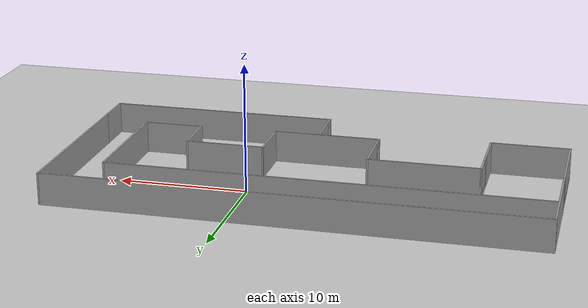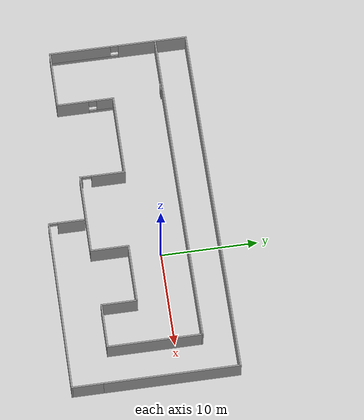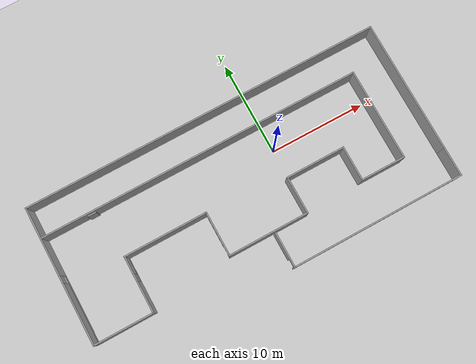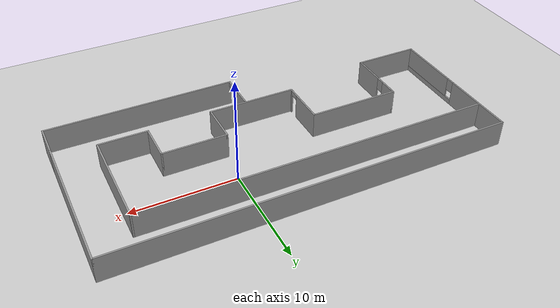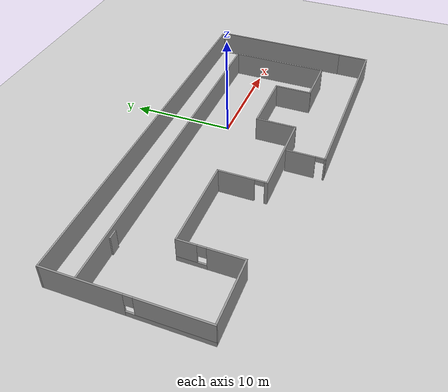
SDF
<sdf version="1.7">
 <world name="default">
  <light name="sun" type="directional">
   <pose>0 0 10 0 -0 0</pose>
   <diffuse>0.8 0.8 0.8 1</diffuse>
   <specular>0.2 0.2 0.2 1</specular>
   <attenuation>
    <range>1000</range>
    <constant>0.9</constant>
    <linear>0.01</linear>
    <quadratic>0.001</quadratic>
   </attenuation>
   <direction>-0.5 0.1 -0.9</direction>
   <spot><inner_angle>0</inner_angle><outer_angle>0</outer_angle><falloff>0</falloff></spot>
  </light>
  <model name="ground_plane">
   <static>1</static>
   <link name="link">
    <collision name="collision">
     <geometry><plane><normal>0 0 1</normal><size>100 100</size></plane></geometry>
     <surface><friction><ode><mu>100</mu><mu2>50</mu2></ode></friction></surface>
    </collision>
    <visual name="visual">
     <cast_shadows>0</cast_shadows>
     <geometry><plane><normal>0 0 1</normal><size>100 100</size></plane></geometry>
     <material>
      <script><uri>file://media/materials/scripts/gazebo.material</uri><name>Gazebo/Grey</name></script>
     </material>
    </visual>
   </link>
  </model>
  <gravity>0 0 -9.8</gravity>
  <magnetic_field>6e-06 2.3e-05 -4.2e-05</magnetic_field>
  <atmosphere type="adiabatic"/>
  <physics type="ode">
   <max_step_size>0.001</max_step_size>
   <real_time_factor>1</real_time_factor>
   <real_time_update_rate>1000</real_time_update_rate>
  </physics>
  <scene><ambient>0.4 0.4 0.4 1</ambient><background>0.7 0.7 0.7 1</background><shadows>1</shadows></scene>
  <spherical_coordinates>
   <surface_model>EARTH_WGS84</surface_model>
   <latitude_deg>0</latitude_deg>
   <longitude_deg>0</longitude_deg>
   <elevation>0</elevation>
   <heading_deg>0</heading_deg>
  </spherical_coordinates>
  <model name="my_room">
   <pose>-4.66131 -2.46983 0 0 -0 0</pose>
   <link name="Door_3">
    <collision name="Door_3_Collision">
     <geometry><box><size>0.9 0.17 2</size></box></geometry>
     <pose>0 0 1 0 -0 0</pose>
    </collision>
    <visual name="Door_3_Visual">
     <pose>0 0 1 0 -0 0</pose>
     <geometry><box><size>0.9 0.17 2</size></box></geometry>
     <material>
      <script><uri>file://media/materials/scripts/gazebo.material</uri><name>Gazebo/Grey</name></script>
     </material>
    </visual>
    <pose>-13.658 5.10812 0 0 -0 0</pose>
   </link>
   <link name="Wall_10">
    <collision name="Wall_10_Collision">
     <geometry><box><size>8.75 0.15 2.5</size></box></geometry>
     <pose>0 0 1.25 0 -0 0</pose>
    </collision>
    <visual name="Wall_10_Visual">
     <pose>0 0 1.25 0 -0 0</pose>
     <geometry><box><size>8.75 0.15 2.5</size></box></geometry>
     <material>
      <script><uri>file://media/materials/scripts/gazebo.material</uri><name>Gazebo/Grey</name></script>
      <ambient>1 1 1 1</ambient>
     </material>
     <meta><layer>0</layer></meta>
    </visual>
    <pose>-8.4 -0.025001 0 0 -0 0</pose>
   </link>
   <link name="Wall_11">
    <pose>-4.1 -2.325 0 0 -0 -1.5708</pose>
    <visual name="Wall_11_Visual_0">
     <pose>-0.608588 0 1.25 0 -0 0</pose>
     <geometry><box><size>3.53282 0.15 2.5</size></box></geometry>
     <material>
      <script><uri>file://media/materials/scripts/gazebo.material</uri><name>Gazebo/Grey</name></script>
      <ambient>1 1 1 1</ambient>
     </material>
     <meta><layer>0</layer></meta>
    </visual>
    <collision name="Wall_11_Collision_0">
     <geometry><box><size>3.53282 0.15 2.5</size></box></geometry>
     <pose>-0.608588 0 1.25 0 -0 0</pose>
    </collision>
    <visual name="Wall_11_Visual_1">
     <pose>2.21641 0 1.25 0 -0 0</pose>
     <geometry><box><size>0.317176 0.15 2.5</size></box></geometry>
     <material>
      <script><uri>file://media/materials/scripts/gazebo.material</uri><name>Gazebo/Grey</name></script>
      <ambient>1 1 1 1</ambient>
     </material>
     <meta><layer>0</layer></meta>
    </visual>
    <collision name="Wall_11_Collision_1">
     <geometry><box><size>0.317176 0.15 2.5</size></box></geometry>
     <pose>2.21641 0 1.25 0 -0 0</pose>
    </collision>
    <visual name="Wall_11_Visual_2">
     <pose>1.60782 0 2.25 0 -0 0</pose>
     <geometry><box><size>0.9 0.15 0.5</size></box></geometry>
     <material>
      <script><uri>file://media/materials/scripts/gazebo.material</uri><name>Gazebo/Grey</name></script>
      <ambient>1 1 1 1</ambient>
     </material>
     <meta><layer>0</layer></meta>
    </visual>
    <collision name="Wall_11_Collision_2">
     <geometry><box><size>0.9 0.15 0.5</size></box></geometry>
     <pose>1.60782 0 2.25 0 -0 0</pose>
    </collision>
   </link>
   <link name="Wall_12">
    <collision name="Wall_12_Collision">
     <geometry><box><size>8.5 0.15 2.5</size></box></geometry>
     <pose>0 0 1.25 0 -0 0</pose>
    </collision>
    <visual name="Wall_12_Visual">
     <pose>0 0 1.25 0 -0 0</pose>
     <geometry><box><size>8.5 0.15 2.5</size></box></geometry>
     <material>
      <script><uri>file://media/materials/scripts/gazebo.material</uri><name>Gazebo/Grey</name></script>
      <ambient>1 1 1 1</ambient>
     </material>
     <meta><layer>0</layer></meta>
    </visual>
    <pose>0.074999 -4.625 0 0 -0 0</pose>
   </link>
   <link name="Wall_13">
    <collision name="Wall_13_Collision">
     <geometry><box><size>4 0.15 2.5</size></box></geometry>
     <pose>0 0 1.25 0 -0 0</pose>
    </collision>
    <visual name="Wall_13_Visual">
     <pose>0 0 1.25 0 -0 0</pose>
     <geometry><box><size>4 0.15 2.5</size></box></geometry>
     <material>
      <script><uri>file://media/materials/scripts/gazebo.material</uri><name>Gazebo/Grey</name></script>
      <ambient>1 1 1 1</ambient>
     </material>
     <meta><layer>0</layer></meta>
    </visual>
    <pose>4.25 -2.7 0 0 -0 1.5708</pose>
   </link>
   <link name="Wall_14">
    <collision name="Wall_14_Collision">
     <geometry><box><size>6.25 0.15 2.5</size></box></geometry>
     <pose>0 0 1.25 0 -0 0</pose>
    </collision>
    <visual name="Wall_14_Visual">
     <pose>0 0 1.25 0 -0 0</pose>
     <geometry><box><size>6.25 0.15 2.5</size></box></geometry>
     <material>
      <script><uri>file://media/materials/scripts/gazebo.material</uri><name>Gazebo/Grey</name></script>
      <ambient>1 1 1 1</ambient>
     </material>
     <meta><layer>0</layer></meta>
    </visual>
    <pose>7.3 -0.775001 0 0 -0 0</pose>
   </link>
   <link name="Wall_15">
    <collision name="Wall_15_Collision">
     <geometry><box><size>3.75 0.15 2.5</size></box></geometry>
     <pose>0 0 1.25 0 -0 0</pose>
    </collision>
    <visual name="Wall_15_Visual">
     <pose>0 0 1.25 0 -0 0</pose>
     <geometry><box><size>3.75 0.15 2.5</size></box></geometry>
     <material>
      <script><uri>file://media/materials/scripts/gazebo.material</uri><name>Gazebo/Grey</name></script>
      <ambient>1 1 1 1</ambient>
     </material>
     <meta><layer>0</layer></meta>
    </visual>
    <pose>10.35 -2.575 0 0 -0 -1.5708</pose>
   </link>
   <link name="Wall_16">
    <collision name="Wall_16_Collision">
     <geometry><box><size>4.75 0.15 2.5</size></box></geometry>
     <pose>0 0 1.25 0 -0 0</pose>
    </collision>
    <visual name="Wall_16_Visual">
     <pose>0 0 1.25 0 -0 0</pose>
     <geometry><box><size>4.75 0.15 2.5</size></box></geometry>
     <material>
      <script><uri>file://media/materials/scripts/gazebo.material</uri><name>Gazebo/Grey</name></script>
      <ambient>1 1 1 1</ambient>
     </material>
     <meta><layer>0</layer></meta>
    </visual>
    <pose>12.65 -4.375 0 0 -0 0</pose>
   </link>
   <link name="Wall_17">
    <collision name="Wall_17_Collision">
     <geometry><box><size>9.75 0.15 2.5</size></box></geometry>
     <pose>0 0 1.25 0 -0 0</pose>
    </collision>
    <visual name="Wall_17_Visual">
     <pose>0 0 1.25 0 -0 0</pose>
     <geometry><box><size>9.75 0.15 2.5</size></box></geometry>
     <material>
      <script><uri>file://media/materials/scripts/gazebo.material</uri><name>Gazebo/Grey</name></script>
      <ambient>1 1 1 1</ambient>
     </material>
     <meta><layer>0</layer></meta>
    </visual>
    <pose>14.95 0.424999 0 0 -0 1.5708</pose>
   </link>
   <link name="Wall_18">
    <collision name="Wall_18_Collision">
     <geometry><box><size>33.75 0.15 2.5</size></box></geometry>
     <pose>0 0 1.25 0 -0 0</pose>
    </collision>
    <visual name="Wall_18_Visual">
     <pose>0 0 1.25 0 -0 0</pose>
     <geometry><box><size>33.75 0.15 2.5</size></box></geometry>
     <material>
      <script><uri>file://media/materials/scripts/gazebo.material</uri><name>Gazebo/Grey</name></script>
      <ambient>1 1 1 1</ambient>
     </material>
     <meta><layer>0</layer></meta>
    </visual>
    <pose>-1.85 5.225 0 0 -0 3.14159</pose>
   </link>
   <link name="Wall_20">
    <collision name="Wall_20_Collision">
     <geometry><box><size>3.25 0.15 2.5</size></box></geometry>
     <pose>0 0 1.25 0 -0 0</pose>
    </collision>
    <visual name="Wall_20_Visual">
     <pose>0 0 1.25 0 -0 0</pose>
     <geometry><box><size>3.25 0.15 2.5</size></box></geometry>
     <material>
      <script><uri>file://media/materials/scripts/gazebo.material</uri><name>Gazebo/Grey</name></script>
      <ambient>1 1 1 1</ambient>
     </material>
     <meta><layer>0</layer></meta>
    </visual>
    <pose>18.8 -6.925 0 0 -0 -1.5708</pose>
   </link>
   <link name="Wall_21">
    <collision name="Wall_21_Collision">
     <geometry><box><size>18.25 0.15 2.5</size></box></geometry>
     <pose>0 0 1.25 0 -0 0</pose>
    </collision>
    <visual name="Wall_21_Visual">
     <pose>0 0 1.25 0 -0 0</pose>
     <geometry><box><size>18.25 0.15 2.5</size></box></geometry>
     <material>
      <script><uri>file://media/materials/scripts/gazebo.material</uri><name>Gazebo/Grey</name></script>
      <ambient>1 1 1 1</ambient>
     </material>
     <meta><layer>0</layer></meta>
    </visual>
    <pose>9.75 -8.475 0 0 -0 3.14159</pose>
   </link>
   <link name="Wall_22">
    <pose>0.699999 -6.675 0 0 -0 1.5708</pose>
    <visual name="Wall_22_Visual_0">
     <pose>-1.84309 0 1.25 0 -0 0</pose>
     <geometry><box><size>0.063814 0.15 2.5</size></box></geometry>
     <material>
      <script><uri>file://media/materials/scripts/gazebo.material</uri><name>Gazebo/Grey</name></script>
      <ambient>1 1 1 1</ambient>
     </material>
     <meta><layer>0</layer></meta>
    </visual>
    <collision name="Wall_22_Collision_0">
     <geometry><box><size>0.063814 0.15 2.5</size></box></geometry>
     <pose>-1.84309 0 1.25 0 -0 0</pose>
    </collision>
    <visual name="Wall_22_Visual_1">
     <pose>0.481907 0 1.25 0 -0 0</pose>
     <geometry><box><size>2.78619 0.15 2.5</size></box></geometry>
     <material>
      <script><uri>file://media/materials/scripts/gazebo.material</uri><name>Gazebo/Grey</name></script>
      <ambient>1 1 1 1</ambient>
     </material>
     <meta><layer>0</layer></meta>
    </visual>
    <collision name="Wall_22_Collision_1">
     <geometry><box><size>2.78619 0.15 2.5</size></box></geometry>
     <pose>0.481907 0 1.25 0 -0 0</pose>
    </collision>
    <visual name="Wall_22_Visual_2">
     <pose>-1.36119 0 2.25 0 -0 0</pose>
     <geometry><box><size>0.9 0.15 0.5</size></box></geometry>
     <material>
      <script><uri>file://media/materials/scripts/gazebo.material</uri><name>Gazebo/Grey</name></script>
      <ambient>1 1 1 1</ambient>
     </material>
     <meta><layer>0</layer></meta>
    </visual>
    <collision name="Wall_22_Collision_2">
     <geometry><box><size>0.9 0.15 0.5</size></box></geometry>
     <pose>-1.36119 0 2.25 0 -0 0</pose>
    </collision>
   </link>
   <link name="Wall_3">
    <collision name="Wall_3_Collision">
     <geometry><box><size>37.75 0.15 2.5</size></box></geometry>
     <pose>0 0 1.25 0 -0 0</pose>
    </collision>
    <visual name="Wall_3_Visual">
     <pose>0 0 1.25 0 -0 0</pose>
     <geometry><box><size>37.75 0.15 2.5</size></box></geometry>
     <material>
      <script><uri>file://media/materials/scripts/gazebo.material</uri><name>Gazebo/Grey</name></script>
      <ambient>1 1 1 1</ambient>
     </material>
     <meta><layer>0</layer></meta>
    </visual>
    <pose>-0 8.475 0 0 -0 0</pose>
   </link>
   <link name="Wall_5">
    <collision name="Wall_5_Collision">
     <geometry><box><size>14 0.15 2.5</size></box></geometry>
     <pose>0 0 1.25 0 -0 0</pose>
    </collision>
    <visual name="Wall_5_Visual">
     <pose>0 0 1.25 0 -0 0</pose>
     <geometry><box><size>14 0.15 2.5</size></box></geometry>
     <material>
      <script><uri>file://media/materials/scripts/gazebo.material</uri><name>Gazebo/Grey</name></script>
      <ambient>1 1 1 1</ambient>
     </material>
     <meta><layer>0</layer></meta>
    </visual>
    <pose>18.8 1.55 0 0 -0 -1.5708</pose>
   </link>
   <link name="Wall_7">
    <pose>-18.8 1.3 0 0 -0 -1.5708</pose>
    <visual name="Wall_7_Visual_0">
     <pose>-3.61833 0 1.25 0 -0 0</pose>
     <geometry><box><size>7.26333 0.15 2.5</size></box></geometry>
     <material>
      <script><uri>file://media/materials/scripts/gazebo.material</uri><name>Gazebo/Grey</name></script>
      <ambient>1 1 1 1</ambient>
     </material>
     <meta><layer>0</layer></meta>
    </visual>
    <collision name="Wall_7_Collision_0">
     <geometry><box><size>7.26333 0.15 2.5</size></box></geometry>
     <pose>-3.61833 0 1.25 0 -0 0</pose>
    </collision>
    <visual name="Wall_7_Visual_1">
     <pose>3.63167 0 0.25 0 -0 0</pose>
     <geometry><box><size>7.23667 0.15 0.5</size></box></geometry>
     <material>
      <script><uri>file://media/materials/scripts/gazebo.material</uri><name>Gazebo/Grey</name></script>
      <ambient>1 1 1 1</ambient>
     </material>
     <meta><layer>0</layer></meta>
    </visual>
    <collision name="Wall_7_Collision_1">
     <geometry><box><size>7.23667 0.15 0.5</size></box></geometry>
     <pose>3.63167 0 0.25 0 -0 0</pose>
    </collision>
    <visual name="Wall_7_Visual_2">
     <pose>4.03167 0 1.5 0 -0 0</pose>
     <geometry><box><size>6.43667 0.15 2</size></box></geometry>
     <material>
      <script><uri>file://media/materials/scripts/gazebo.material</uri><name>Gazebo/Grey</name></script>
      <ambient>1 1 1 1</ambient>
     </material>
     <meta><layer>0</layer></meta>
    </visual>
    <collision name="Wall_7_Collision_2">
     <geometry><box><size>6.43667 0.15 2</size></box></geometry>
     <pose>4.03167 0 1.5 0 -0 0</pose>
    </collision>
    <visual name="Wall_7_Visual_3">
     <pose>0.413334 0 1.9 0 -0 0</pose>
     <geometry><box><size>0.8 0.15 1.2</size></box></geometry>
     <material>
      <script><uri>file://media/materials/scripts/gazebo.material</uri><name>Gazebo/Grey</name></script>
      <ambient>1 1 1 1</ambient>
     </material>
     <meta><layer>0</layer></meta>
    </visual>
    <collision name="Wall_7_Collision_3">
     <geometry><box><size>0.8 0.15 1.2</size></box></geometry>
     <pose>0.413334 0 1.9 0 -0 0</pose>
    </collision>
   </link>
   <link name="Wall_8">
    <collision name="Wall_8_Collision">
     <geometry><box><size>6.25 0.15 2.5</size></box></geometry>
     <pose>0 0 1.25 0 -0 0</pose>
    </collision>
    <visual name="Wall_8_Visual">
     <pose>0 0 1.25 0 -0 0</pose>
     <geometry><box><size>6.25 0.15 2.5</size></box></geometry>
     <material>
      <script><uri>file://media/materials/scripts/gazebo.material</uri><name>Gazebo/Grey</name></script>
      <ambient>1 1 1 1</ambient>
     </material>
     <meta><layer>0</layer></meta>
    </visual>
    <pose>-15.75 -5.875 0 0 -0 0</pose>
   </link>
   <link name="Wall_9">
    <pose>-12.7 -2.95 0 0 -0 1.5708</pose>
    <visual name="Wall_9_Visual_0">
     <pose>-1.32953 0 1.25 0 -0 0</pose>
     <geometry><box><size>3.34093 0.15 2.5</size></box></geometry>
     <material>
      <script><uri>file://media/materials/scripts/gazebo.material</uri><name>Gazebo/Grey</name></script>
      <ambient>1 1 1 1</ambient>
     </material>
     <meta><layer>0</layer></meta>
    </visual>
    <collision name="Wall_9_Collision_0">
     <geometry><box><size>3.34093 0.15 2.5</size></box></geometry>
     <pose>-1.32953 0 1.25 0 -0 0</pose>
    </collision>
    <visual name="Wall_9_Visual_1">
     <pose>1.67047 0 0.25 0 -0 0</pose>
     <geometry><box><size>2.65907 0.15 0.5</size></box></geometry>
     <material>
      <script><uri>file://media/materials/scripts/gazebo.material</uri><name>Gazebo/Grey</name></script>
      <ambient>1 1 1 1</ambient>
     </material>
     <meta><layer>0</layer></meta>
    </visual>
    <collision name="Wall_9_Collision_1">
     <geometry><box><size>2.65907 0.15 0.5</size></box></geometry>
     <pose>1.67047 0 0.25 0 -0 0</pose>
    </collision>
    <visual name="Wall_9_Visual_2">
     <pose>2.07047 0 1.5 0 -0 0</pose>
     <geometry><box><size>1.85906 0.15 2</size></box></geometry>
     <material>
      <script><uri>file://media/materials/scripts/gazebo.material</uri><name>Gazebo/Grey</name></script>
      <ambient>1 1 1 1</ambient>
     </material>
     <meta><layer>0</layer></meta>
    </visual>
    <collision name="Wall_9_Collision_2">
     <geometry><box><size>1.85906 0.15 2</size></box></geometry>
     <pose>2.07047 0 1.5 0 -0 0</pose>
    </collision>
    <visual name="Wall_9_Visual_3">
     <pose>0.740935 0 1.9 0 -0 0</pose>
     <geometry><box><size>0.8 0.15 1.2</size></box></geometry>
     <material>
      <script><uri>file://media/materials/scripts/gazebo.material</uri><name>Gazebo/Grey</name></script>
      <ambient>1 1 1 1</ambient>
     </material>
     <meta><layer>0</layer></meta>
    </visual>
    <collision name="Wall_9_Collision_3">
     <geometry><box><size>0.8 0.15 1.2</size></box></geometry>
     <pose>0.740935 0 1.9 0 -0 0</pose>
    </collision>
   </link>
   <static>1</static>
  </model>
 </world>
</sdf>
